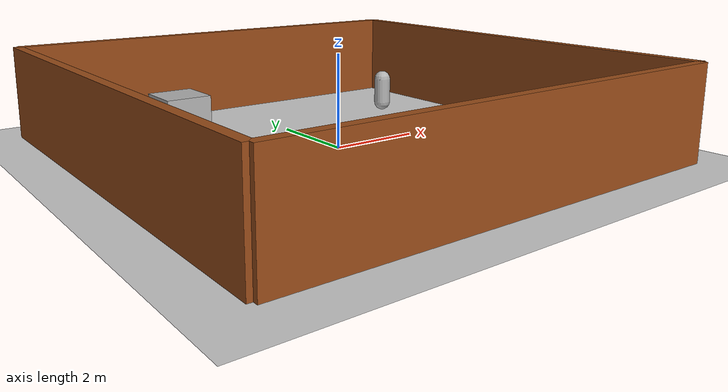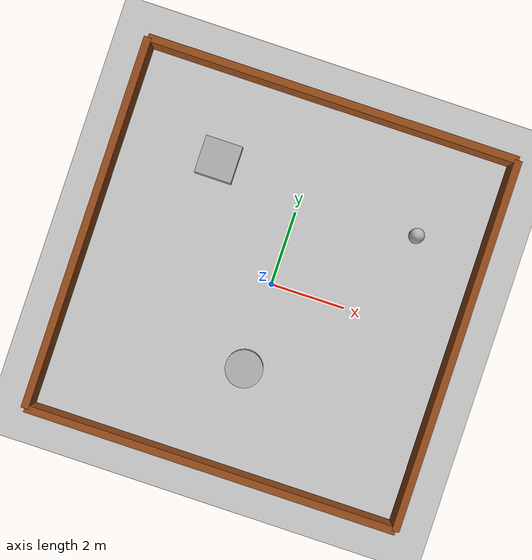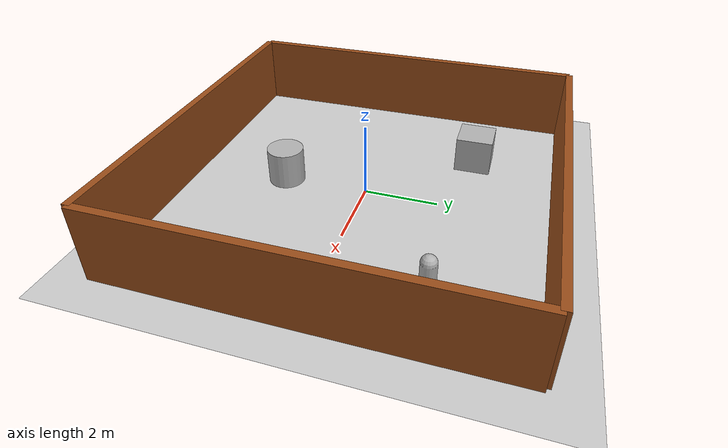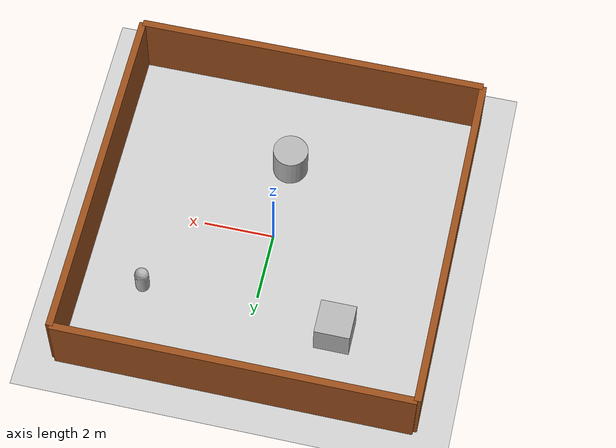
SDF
<?xml version='1.0'?>
<sdf version='1.9'>

  <world name='empty_world'>
    <physics name='1ms' type='ignored'>
      <max_step_size>0.001</max_step_size>
      <real_time_factor>1</real_time_factor>
      <real_time_update_rate>1000</real_time_update_rate>
    </physics>
    <plugin name='ignition::gazebo::systems::Physics' filename='ignition-gazebo-physics-system'/>
    <plugin name='ignition::gazebo::systems::UserCommands' filename='ignition-gazebo-user-commands-system'/>
    <plugin name='ignition::gazebo::systems::SceneBroadcaster' filename='ignition-gazebo-scene-broadcaster-system'/>
    <plugin name='ignition::gazebo::systems::Sensors' filename='ignition-gazebo-sensors-system'>
      <render_engine>ogre</render_engine>
    </plugin>
    <plugin filename="ignition-gazebo-imu-system"
    name="ignition::gazebo::systems::Imu"/>

    <gravity>0 0 -9.8</gravity>
    <magnetic_field>6e-06 2.3e-05 -4.2e-05</magnetic_field>
    <atmosphere type='adiabatic'/>
    <scene>
      <ambient>0.4 0.4 0.4 1</ambient>
      <background>0.7 0.7 0.7 1</background>
      <shadows>true</shadows>
    </scene>
    <model name='ground_plane'>
      <static>true</static>
      <link name='link'>
        <collision name='collision'>
          <geometry>
            <plane>
              <normal>0 0 1</normal>
              <size>1 1</size>
            </plane>
          </geometry>
          <surface>
            <friction>
              <ode/>
            </friction>
            <bounce/>
            <contact/>
          </surface>
        </collision>
        <visual name='visual'>
          <geometry>
            <plane>
              <normal>0 0 1</normal>
              <size>100 100</size>
            </plane>
          </geometry>
          <material>
            <ambient>0.8 0.8 0.8 1</ambient>
            <diffuse>0.8 0.8 0.8 1</diffuse>
          </material>
        </visual>
        <pose>0 0 0 0 -0 0</pose>
        <inertial>
          <pose>0 0 0 0 -0 0</pose>
          <mass>1</mass>
          <inertia>
            <ixx>1</ixx>
            <ixy>0</ixy>
            <ixz>0</ixz>
            <iyy>1</iyy>
            <iyz>0</iyz>
            <izz>1</izz>
          </inertia>
        </inertial>
        <enable_wind>false</enable_wind>
      </link>
      <pose>0 0 0 0 -0 0</pose>
      <self_collide>false</self_collide>
    </model>
    <model name='wall_north'>
      <static>true</static>
      <pose>5 0 0.75 0 -0 0</pose>
      <link name='link'>
        <collision name='collision'>
          <geometry>
            <box>
              <size>0.2 10 2.5</size>
            </box>
          </geometry>
          <surface>
            <friction>
              <ode/>
            </friction>
            <bounce/>
            <contact/>
          </surface>
        </collision>
        <visual name='visual'>
          <geometry>
            <box>
              <size>0.2 10 2.5</size>
            </box>
          </geometry>
          <material>
            <ambient>0.6 0.3 0.1 1</ambient>
            <diffuse>0.6 0.3 0.1 1</diffuse>
            <specular>0.1 0.1 0.1 1</specular>
          </material>
        </visual>
        <pose>0 0 0 0 -0 0</pose>
        <inertial>
          <pose>0 0 0 0 -0 0</pose>
          <mass>1</mass>
          <inertia>
            <ixx>1</ixx>
            <ixy>0</ixy>
            <ixz>0</ixz>
            <iyy>1</iyy>
            <iyz>0</iyz>
            <izz>1</izz>
          </inertia>
        </inertial>
        <enable_wind>false</enable_wind>
      </link>
      <self_collide>false</self_collide>
    </model>
    <model name='wall_south'>
      <static>true</static>
      <pose>-5 0 0.75 0 -0 0</pose>
      <link name='link'>
        <collision name='collision'>
          <geometry>
            <box>
              <size>0.2 10 2.5</size>
            </box>
          </geometry>
          <surface>
            <friction>
              <ode/>
            </friction>
            <bounce/>
            <contact/>
          </surface>
        </collision>
        <visual name='visual'>
          <geometry>
            <box>
              <size>0.2 10 2.5</size>
            </box>
          </geometry>
          <material>
            <ambient>0.6 0.3 0.1 1</ambient>
            <diffuse>0.6 0.3 0.1 1</diffuse>
            <specular>0.1 0.1 0.1 1</specular>
          </material>
        </visual>
        <pose>0 0 0 0 -0 0</pose>
        <inertial>
          <pose>0 0 0 0 -0 0</pose>
          <mass>1</mass>
          <inertia>
            <ixx>1</ixx>
            <ixy>0</ixy>
            <ixz>0</ixz>
            <iyy>1</iyy>
            <iyz>0</iyz>
            <izz>1</izz>
          </inertia>
        </inertial>
        <enable_wind>false</enable_wind>
      </link>
      <self_collide>false</self_collide>
    </model>
    <model name='wall_east'>
      <static>true</static>
      <pose>0 5 0.75 0 -0 1.5708</pose>
      <link name='link'>
        <collision name='collision'>
          <geometry>
            <box>
              <size>0.2 10 2.5</size>
            </box>
          </geometry>
          <surface>
            <friction>
              <ode/>
            </friction>
            <bounce/>
            <contact/>
          </surface>
        </collision>
        <visual name='visual'>
          <geometry>
            <box>
              <size>0.2 10 2.5</size>
            </box>
          </geometry>
          <material>
            <ambient>0.6 0.3 0.1 1</ambient>
            <diffuse>0.6 0.3 0.1 1</diffuse>
            <specular>0.1 0.1 0.1 1</specular>
          </material>
        </visual>
        <pose>0 0 0 0 -0 0</pose>
        <inertial>
          <pose>0 0 0 0 -0 0</pose>
          <mass>1</mass>
          <inertia>
            <ixx>1</ixx>
            <ixy>0</ixy>
            <ixz>0</ixz>
            <iyy>1</iyy>
            <iyz>0</iyz>
            <izz>1</izz>
          </inertia>
        </inertial>
        <enable_wind>false</enable_wind>
      </link>
      <self_collide>false</self_collide>
    </model>
    <model name='wall_west'>
      <static>true</static>
      <pose>0 -5 0.75 0 -0 1.5708</pose>
      <link name='link'>
        <collision name='collision'>
          <geometry>
            <box>
              <size>0.2 10 2.5</size>
            </box>
          </geometry>
          <surface>
            <friction>
              <ode/>
            </friction>
            <bounce/>
            <contact/>
          </surface>
        </collision>
        <visual name='visual'>
          <geometry>
            <box>
              <size>0.2 10 2.5</size>
            </box>
          </geometry>
          <material>
            <ambient>0.6 0.3 0.1 1</ambient>
            <diffuse>0.6 0.3 0.1 1</diffuse>
            <specular>0.1 0.1 0.1 1</specular>
          </material>
        </visual>
        <pose>0 0 0 0 -0 0</pose>
        <inertial>
          <pose>0 0 0 0 -0 0</pose>
          <mass>1</mass>
          <inertia>
            <ixx>1</ixx>
            <ixy>0</ixy>
            <ixz>0</ixz>
            <iyy>1</iyy>
            <iyz>0</iyz>
            <izz>1</izz>
          </inertia>
        </inertial>
        <enable_wind>false</enable_wind>
      </link>
      <self_collide>false</self_collide>
    </model>
    <model name='box'>
      <pose>-2.337 2.64679 0.5 0 0 -0</pose>
      <link name='box_link'>
        <inertial>
          <inertia>
            <ixx>0.16666</ixx>
            <ixy>0</ixy>
            <ixz>0</ixz>
            <iyy>0.16666</iyy>
            <iyz>0</iyz>
            <izz>0.16666</izz>
          </inertia>
          <mass>1</mass>
          <pose>0 0 0 0 -0 0</pose>
        </inertial>
        <collision name='box_collision'>
          <geometry>
            <box>
              <size>1 1 1</size>
            </box>
          </geometry>
          <surface>
            <friction>
              <ode/>
            </friction>
            <bounce/>
            <contact/>
          </surface>
        </collision>
        <visual name='box_visual'>
          <geometry>
            <box>
              <size>1 1 1</size>
            </box>
          </geometry>
          <material>
            <ambient>0.3 0.3 0.3 1</ambient>
            <diffuse>0.7 0.7 0.7 1</diffuse>
            <specular>1 1 1 1</specular>
          </material>
        </visual>
        <pose>0 0 0 0 -0 0</pose>
        <enable_wind>false</enable_wind>
      </link>
      <static>false</static>
      <self_collide>false</self_collide>
    </model>
    <model name='capsule'>
      <pose>3.19622 2.39795 0.5 0 -0 0</pose>
      <link name='capsule_link'>
        <inertial>
          <inertia>
            <ixx>0.074153999999999998</ixx>
            <ixy>0</ixy>
            <ixz>0</ixz>
            <iyy>0.074153999999999998</iyy>
            <iyz>0</iyz>
            <izz>0.018769000000000001</izz>
          </inertia>
          <mass>1</mass>
          <pose>0 0 0 0 -0 0</pose>
        </inertial>
        <collision name='capsule_collision'>
          <geometry>
            <capsule>
              <radius>0.20000000000000001</radius>
              <length>0.59999999999999998</length>
            </capsule>
          </geometry>
          <surface>
            <friction>
              <ode/>
            </friction>
            <bounce/>
            <contact/>
          </surface>
        </collision>
        <visual name='capsule_visual'>
          <geometry>
            <capsule>
              <radius>0.20000000000000001</radius>
              <length>0.59999999999999998</length>
            </capsule>
          </geometry>
          <material>
            <ambient>0.3 0.3 0.3 1</ambient>
            <diffuse>0.7 0.7 0.7 1</diffuse>
            <specular>1 1 1 1</specular>
          </material>
        </visual>
        <pose>0 0 0 0 -0 0</pose>
        <enable_wind>false</enable_wind>
      </link>
      <static>false</static>
      <self_collide>false</self_collide>
    </model>
    <model name='cylinder'>
      <pose>0.010411 -2.31099 0.499999 -0 -0 0</pose>
      <link name='cylinder_link'>
        <inertial>
          <inertia>
            <ixx>0.14580000000000001</ixx>
            <ixy>0</ixy>
            <ixz>0</ixz>
            <iyy>0.14580000000000001</iyy>
            <iyz>0</iyz>
            <izz>0.125</izz>
          </inertia>
          <mass>1</mass>
          <pose>0 0 0 0 -0 0</pose>
        </inertial>
        <collision name='cylinder_collision'>
          <geometry>
            <cylinder>
              <radius>0.5</radius>
              <length>1</length>
            </cylinder>
          </geometry>
          <surface>
            <friction>
              <ode/>
            </friction>
            <bounce/>
            <contact/>
          </surface>
        </collision>
        <visual name='cylinder_visual'>
          <geometry>
            <cylinder>
              <radius>0.5</radius>
              <length>1</length>
            </cylinder>
          </geometry>
          <material>
            <ambient>0.3 0.3 0.3 1</ambient>
            <diffuse>0.7 0.7 0.7 1</diffuse>
            <specular>1 1 1 1</specular>
          </material>
        </visual>
        <pose>0 0 0 0 -0 0</pose>
        <enable_wind>false</enable_wind>
      </link>
      <static>false</static>
      <self_collide>false</self_collide>
    </model>
    <light name='sun' type='directional'>
      <pose>0 0 10 0 -0 0</pose>
      <cast_shadows>true</cast_shadows>
      <intensity>1</intensity>
      <direction>-0.5 0.1 -0.9</direction>
      <diffuse>0.8 0.8 0.8 1</diffuse>
      <specular>0.2 0.2 0.2 1</specular>
      <attenuation>
        <range>10</range>
        <linear>1</linear>
        <constant>1</constant>
        <quadratic>0</quadratic>
      </attenuation>
      <spot>
        <inner_angle>0</inner_angle>
        <outer_angle>0</outer_angle>
        <falloff>0</falloff>
      </spot>
    </light>
  </world>
  <physics name='1ms' type='ignored'>
    <max_step_size>0.004</max_step_size>      <!-- was 0.001 -->
    <real_time_factor>1</real_time_factor>
    <real_time_update_rate>250</real_time_update_rate>  <!-- was 1000 -->
</physics>
</sdf>
